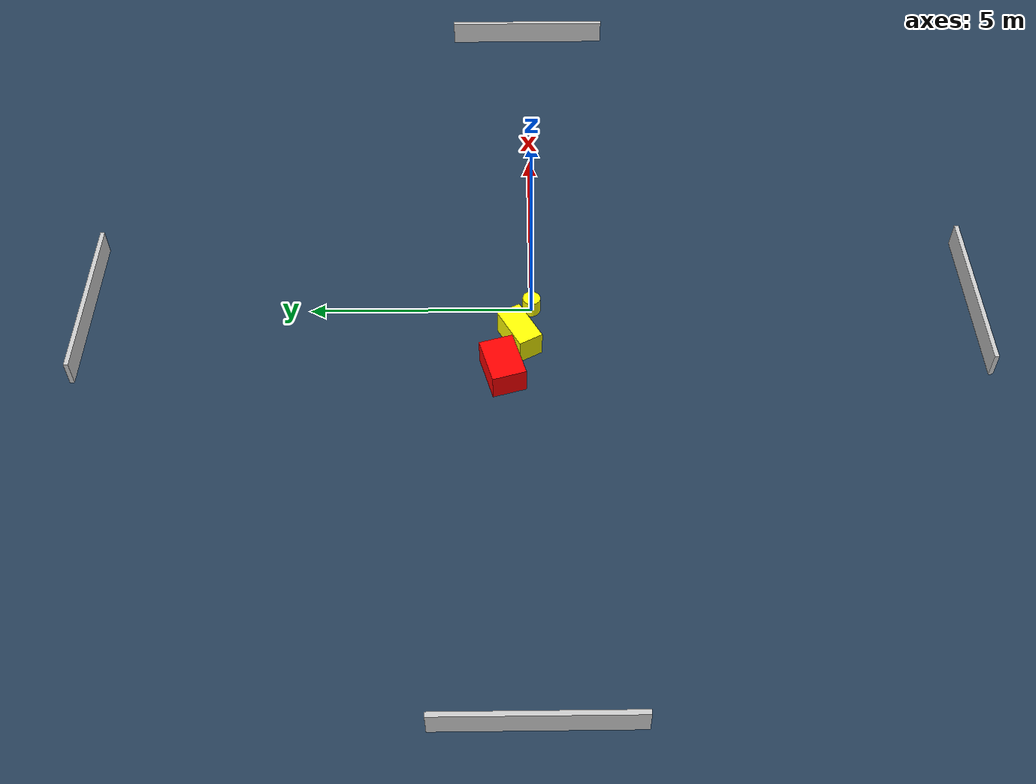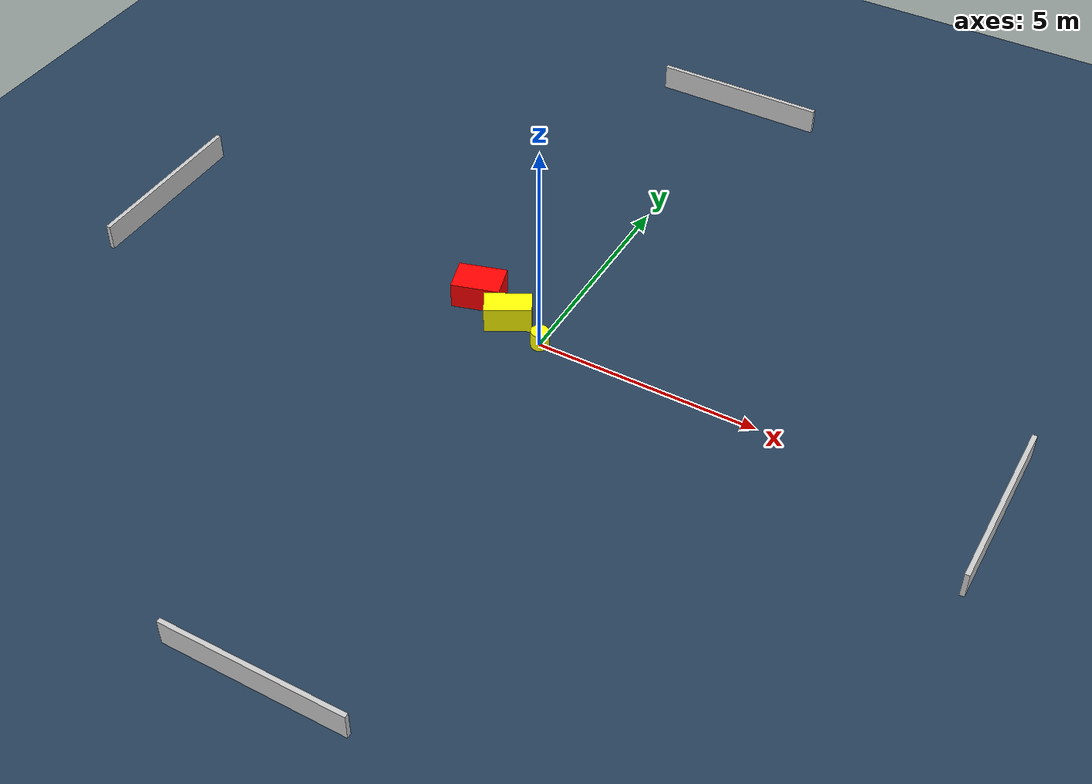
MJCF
<?xml version="1.0" ?>
<mujoco model="generated_environment">
  <option timestep="0.01" integrator="RK4" cone="elliptic"/>
  <default>
    <geom density="1"/>
  </default>
  <asset>
    <texture builtin="gradient" height="3072" name="skybox" rgb1="0.3 0.5 0.7" rgb2="0 0 0" type="skybox" width="512"/>
    <texture builtin="checker" height="300" name="groundplane" rgb1="0.2 0.3 0.4" rgb2="0.1 0.2 0.3" type="2d" width="300"/>
    <material name="groundplane" reflectance="0.2" texrepeat="5 5" texture="groundplane"/>
  </asset>
  <worldbody>
    <light dir="0 0 -1" directional="true" pos="0 0 1.5"/>
    <geom condim="3" friction="0.5 0.005 0.001" material="groundplane" name="floor" pos="0 0 0" size="0 0 0.05" type="plane"/>
    <body name="walls">
      <geom name="wall_1" condim="4" pos="-10.0 0.0 0.3" rgba="0.800000011920929 0.800000011920929 0.800000011920929 1.0" size="0.05 2.0 0.3" type="box"/>
      <geom name="wall_2" condim="4" pos="10.0 0.0 0.3" rgba="0.800000011920929 0.800000011920929 0.800000011920929 1.0" size="0.05 2.0 0.3" type="box"/>
      <geom name="wall_3" condim="4" pos="0.0 -10.0 0.3" rgba="0.800000011920929 0.800000011920929 0.800000011920929 1.0" size="2.0 0.05 0.3" type="box"/>
      <geom name="wall_4" condim="4" pos="0.0 10.0 0.3" rgba="0.800000011920929 0.800000011920929 0.800000011920929 1.0" size="2.0 0.05 0.3" type="box"/>
    </body>
    <body name="robot">
      <joint name="joint_x" type="slide" pos="0 0 0" axis="1 0 0"/>
      <joint name="joint_y" type="slide" pos="0 0 0" axis="0 1 0"/>
      <geom name="robot" type="cylinder" pos="0.0 0.0 0.2" size="0.2 0.2 0.0" mass="5.0" friction="1.0 0.005 0.0001" condim="4" rgba="1.0 1.0 0.0 1.0"/>
    </body>
    <body name="obstacle_1_movable">
      <geom name="obstacle_1_movable" condim="4" pos="-0.9393418520838875 0.2724041074434652 0.3" euler="0 0 28.781562294020645" friction="0.0 0.005 0.001" rgba="1.0 1.0 0.0 1.0" size="0.5162958657362267 0.2796278266325816 0.3" type="box" mass="0.1"/>
      <joint type="free"/>
    </body>
    <body name="obstacle_2_static">
      <geom name="obstacle_2_static" condim="4" pos="-1.8818536540244228 0.6454835137827253 0.3" euler="0 0 196.40903228621008" friction="0.0 0.005 0.001" rgba="1.0 0.0 0.0 1.0" size="0.5387354887830222 0.378940954566417 0.3" type="box"/>
    </body>
  </worldbody>
  <actuator>
    <motor name="actuator_x" joint="joint_x" gear="1" ctrlrange="-1 1"/>
    <motor name="actuator_y" joint="joint_y" gear="1" ctrlrange="-1 1"/>
  </actuator>
</mujoco>
